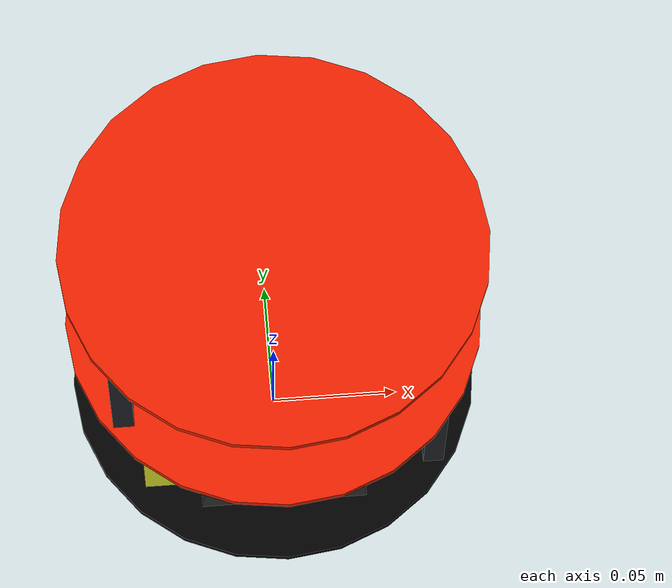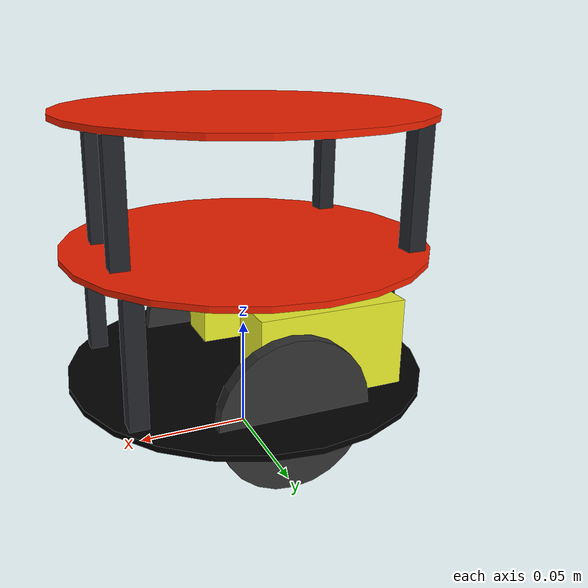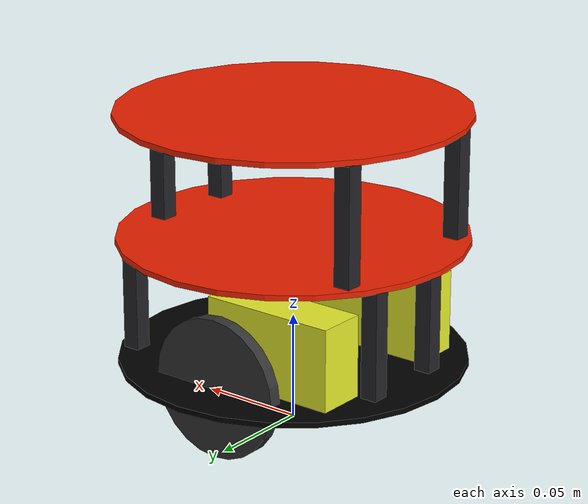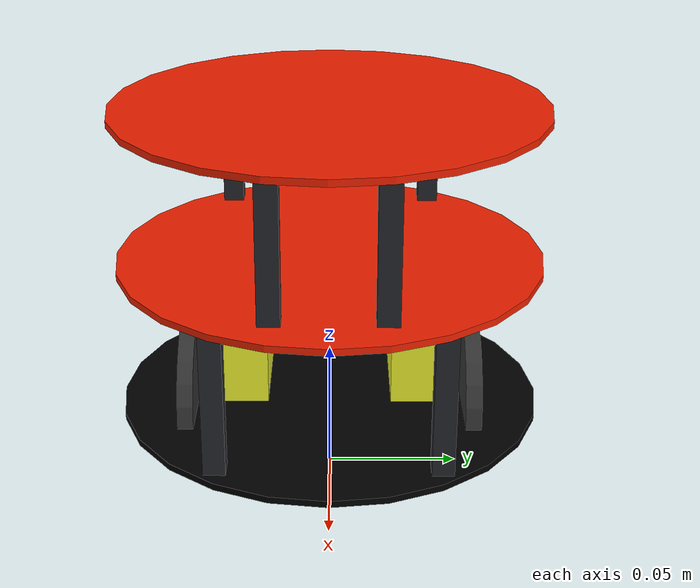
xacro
<?xml version="1.0"?>
<robot xmlns:xacro="http://www.ros.org/wiki/xacro" name="D2Rbot">

  <!--casterwiel hoog 13mm: 0.0013, diameter basis 36mm: 0.0036 (~ halve bol) -->

  <material name="black">
    <color rgba="0 0 0 1"/>
  </material>

  <material name="orange">
    <color rgba="0.94 0.13 0.0 1"/>
  </material>

  <material name="yellow">
    <color rgba="0.92 0.94 0.17 1"/>
  </material>

  <material name="white">
    <color rgba="1 1 1 1"/>
  </material>

  <material name="shark-blue">
    <color rgba="0.141 0.145 0.165 1"/>
  </material>

  <material name="dark_gray">
    <color rgba="0.2 0.2 0.2 1"/>
  </material>

  <xacro:property name="chassis_z_offset" value="0.03125" />

  <!-- Properties of each of the three plates -->
  <xacro:property name="plate_diameter" value="0.160" />
  <xacro:property name="plate_height" value="0.0025" />
  <xacro:property name="plate_mass" value="0.394" />
  <xacro:property name="bottomplate_mass" value="0.350" />
  <xacro:property name="distance_between_plates" value="${connector_height + plate_height}" />

  <!-- Properties of the motors -->
  <!-- Motor dimensions are including the bracket size -->
  <xacro:property name="motor_length" value="0.065" />
  <xacro:property name="motor_width" value="0.023" />
  <xacro:property name="motor_height" value="0.038" />
  <xacro:property name="motor_x_offset" value="0.0215" />
  <xacro:property name="motor_y_offset" value="0.0465" />
  <xacro:property name="motorshaft_x_offset" value="0.0215" />
  <xacro:property name="motorshaft_y_offset" value="${motor_width/2}" />
  <xacro:property name="motorshaft_z_offset" value="-0.0190" />
  <xacro:property name="motor_mass" value="0.037" />

  <!--- Properties of the wheels -->
  <xacro:property name="wheel_diameter" value="0.065" />
  <xacro:property name="wheel_width" value="0.006" />
  <xacro:property name="wheel_offset" value="0.007" />
  <xacro:property name="wheel_mass" value="0.012" />

  <!-- Properties of the vertical connection beams -->
  <xacro:property name="connector_height" value="0.055" />
  <xacro:property name="connector_width" value="0.008" />
  <xacro:property name="connector_x_offset" value="0.060" />
  <xacro:property name="connector_y_offset" value="0.040" />
  <xacro:property name="connector_y_narrow_shift" value="-0.020" />
  <xacro:property name="connector_mass" value="0.002" />

  <!-- Empty first link "world" -->
  <link name="world" />

  <!-- Base_link -->
  <link name="base_link" />

  <!-- Footprint_link -->
  <link name="footprint_link" />

  <!-- A simple fixed joint from our empty world link, to our base. -->
  <!-- The base origin is not offset from the world origin. -->
  <joint name="world_joint" type="fixed">
    <origin xyz="0 0 0" rpy="0 0 0"/>
    <parent link="world"/>
    <child link="base_link"/>
  </joint>

  <joint name="footprint_joint" type="fixed">
    <origin xyz="0 0 ${-chassis_z_offset}" rpy="0 0 0"/>
    <parent link="base_link"/>
    <child link="footprint_link"/>
  </joint>

  <!-- Macro's -->
  <xacro:include filename="$(find d2rbot_description)/urdf/default_inertial.urdf.xacro"/>

  <!-- Start plate macro -->
  <xacro:macro name="plate" params="prefix materialname mass parent parentdistance">

    <link name="${prefix}plate_link">
      <visual>
        <geometry>
          <cylinder length="${plate_height}" radius="${plate_diameter/2}"/>
        </geometry>
        <material name="${materialname}"/>
      </visual>
      <collision>
        <geometry>
          <cylinder length="${plate_height}" radius="${plate_diameter/2}"/>
        </geometry>
      </collision>
      <xacro:default_cylinder_inertial mass="${mass}" radius="${plate_diameter/2}" height="${plate_height}" />
    </link>
    <joint name="${parent}_to_${prefix}plate_joint" type="fixed">
      <parent link="${parent}_link"/>
      <child link="${prefix}plate_link"/>
      <origin xyz="0.0 0.0 ${parentdistance}"/>
    </joint>

  </xacro:macro>

  <!-- Start motorblock macro -->
  <xacro:macro name="motorblock" params="prefix reflect materialname parent">

    <link name="${prefix}motorblock_link">
      <visual>
        <geometry>
          <box size="${motor_length} ${motor_width} ${motor_height}"/>
        </geometry>
        <origin xyz="0.0 0.0 0.0" rpy="0.0 0.0 0.0"/>
        <material name="${materialname}"/>
      </visual>
      <collision>
        <geometry>
          <box size="${motor_length} ${motor_width} ${motor_height}"/>
        </geometry>
      </collision>
      <xacro:default_box_inertial mass="${motor_mass}" />
    </link>
    <joint name="${parent}_to_${prefix}motorblock_joint" type="fixed">
      <parent link="${parent}_link"/>
      <child link="${prefix}motorblock_link"/>
      <origin xyz="${-1*motor_x_offset} ${reflect*(motor_y_offset - motor_width/2)} ${motor_height/2 + plate_height/2}"/>
    </joint>

  </xacro:macro>

  <!-- Start wheel macro -->
  <xacro:macro name="wheel" params="prefix reflect materialname parent">

    <link name="${prefix}wheel_link">
      <visual>
        <geometry>
          <cylinder length="${wheel_width}" radius="${wheel_diameter/2}" />
        </geometry>
        <origin xyz="0.0 0.0 0.0" rpy="${pi/2} 0.0 0.0" />
        <material name="${materialname}"/>
      </visual>
      <collision>
        <geometry>
          <cylinder length="${wheel_width}" radius="${wheel_diameter/2}" />
        </geometry>
      </collision>
      <xacro:default_cylinder_inertial mass="${wheel_mass}" radius="${wheel_diameter/2}" height="${wheel_width}" />
    </link>
    <joint name="${parent}_to_${prefix}wheel_joint" type="continuous">
      <axis xyz="0 1 0" rpy="0 0 0" />
      <parent link="${parent}_link" />
      <child link="${prefix}wheel_link" />
      <origin xyz="${motorshaft_x_offset} ${reflect*(motorshaft_y_offset + wheel_offset)} ${motorshaft_z_offset}" rpy="0 0 0" />
    </joint>

  </xacro:macro>

  <!-- Start connector macro -->
  <!-- Note: connectors are for visual display only. -->
  <!--       The three plates are directly joint to each other.-->
  <xacro:macro name="connector" params="prefix materialname x_reflect y_reflect y_shift:=0.000 parent">

    <link name="${prefix}_${parent}connector_link">
      <visual>
        <geometry>
          <box size="${connector_width} ${connector_width} ${connector_height}"/>
        </geometry>
        <material name="${materialname}"/>
      </visual>
      <collision>
        <geometry>
          <box size="${connector_width} ${connector_width} ${connector_height}"/>
        </geometry>
      </collision>
      <xacro:default_box_inertial mass="${connector_mass}" />
    </link>
    <joint name="${parent}_to_${prefix}connector_joint" type="fixed">
      <parent link="${parent}_link"/>
      <child link="${prefix}_${parent}connector_link"/>
      <origin xyz="${x_reflect * connector_x_offset} ${y_reflect * (connector_y_offset + y_shift)} ${connector_height/2}"/>
    </joint>
  </xacro:macro>

  <!-- Start of the actual robot model -->
  <!-- Bottomplate -->
  <xacro:plate prefix="bottom" materialname="black" mass="${bottomplate_mass}" parent="base" parentdistance="${chassis_z_offset}"/>

  <!-- Middleplate -->
  <xacro:plate prefix="middle" materialname="orange" mass="${plate_mass}" parent="bottomplate" parentdistance="${distance_between_plates}"/>

  <!-- Topplate -->
  <xacro:plate prefix="top" materialname="orange" mass="${plate_mass}" parent="middleplate" parentdistance="${distance_between_plates}"/>

  <!-- Leftmotorblock -->
  <xacro:motorblock prefix="left" reflect="1" materialname="yellow" parent="bottomplate" />
  <!-- Leftwheel -->
  <xacro:wheel prefix="left" reflect="1" materialname="dark_gray" parent="leftmotorblock" />

  <!-- Rightmotorblock -->
  <xacro:motorblock prefix="right" reflect="-1" materialname="yellow" parent="bottomplate" />
  <!-- Rightwheel -->
  <xacro:wheel prefix="right" reflect="-1" materialname="dark_gray" parent="rightmotorblock" />

  <!-- Forwardleft connector bottomplate -->
  <xacro:connector prefix="forwardleft" x_reflect="1" y_reflect="1" materialname="shark-blue" parent="bottomplate" />
  <!-- Forwardright connector bottomplate -->
  <xacro:connector prefix="forwardright" x_reflect="1" y_reflect="-1" materialname="shark-blue" parent="bottomplate" />
  <!-- Backwardleft connector bottomplate -->
  <xacro:connector prefix="backwardleft" x_reflect="-1" y_reflect="1" y_shift="${connector_y_narrow_shift}" materialname="shark-blue" parent="bottomplate" />
  <!-- Backwardright connector bottomplate -->
  <xacro:connector prefix="backwardright" x_reflect="-1" y_reflect="-1" y_shift="${connector_y_narrow_shift}" materialname="shark-blue" parent="bottomplate" />
  <!-- Forwardleft connector niddleplate -->
  <xacro:connector prefix="forwardleft" x_reflect="1" y_reflect="1" y_shift="${connector_y_narrow_shift}" materialname="shark-blue" parent="middleplate" />
  <!-- Forwardright connector middleplate -->
  <xacro:connector prefix="forwardright" x_reflect="1" y_reflect="-1" y_shift="${connector_y_narrow_shift}" materialname="shark-blue" parent="middleplate" />
  <!-- Backwardleft connector middleplate -->
  <xacro:connector prefix="backwardleft" x_reflect="-1" y_reflect="1" materialname="shark-blue" parent="middleplate" />
  <!-- Backwardright connector middleplate -->
  <xacro:connector prefix="backwardright" x_reflect="-1" y_reflect="-1" materialname="shark-blue" parent="middleplate" />

</robot>

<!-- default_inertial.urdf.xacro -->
<robot xmlns:xacro="http://www.ros.org/wiki/xacro">

  <xacro:macro name="default_generic_inertial" params="mass">
    <inertial>
      <mass value="${mass}" />
      <inertia ixx="1e-3" ixy="0.0" ixz="0.0" iyy="1e-3" iyz="0.0" izz="1e-3" />
    </inertial>
  </xacro:macro>

  <xacro:macro name="default_box_inertial" params="mass">
    <inertial>
      <mass value="${mass}"/>
      <!-- Inertia for a box: ixx=iyy=izz=1.0, ixy=ixz=iyz=0 -->
      <inertia ixx="1.0" ixy="0.0" ixz="0.0" iyy="1.0" iyz="0.0" izz="1.0"/>
    </inertial>
  </xacro:macro>

  <xacro:macro name="default_cylinder_inertial" params="mass radius height">
    <inertial>
      <mass value="${mass}"/>
      <!-- Inertia for a cylinder: ixx = iyy = m*(3r^2 + h^2)/12, izz = m*r^2/2, ixy=ixz=iyz=0 -->
      <inertia ixx="${mass * (3 * radius * radius + height * height) / 12}"
               iyy="${mass * (3 * radius * radius + height * height) / 12}"
               izz="${mass * radius * radius / 2}"
               ixy="0" iyz="0" ixz="0" />
    </inertial>
  </xacro:macro>

  <xacro:macro name="default_sphere_inertial" params="mass radius">
    <inertial>
      <origin xyz="0 0 0" rpy="0 0 0"/>
      <!-- The inertia values for a uniform density sphere -->
      <!-- ixx = iyy = izz = (2/5) * m * r^2, ixy=ixz=iyz=0 -->
      <inertia ixx="${(2.0/5.0) * mass * radius*radius}"
               iyy="${(2.0/5.0) * mass * radius*radius}"
               izz="${(2.0/5.0) * mass * radius*radius}"
               ixy="0" iyz="0" ixz="0" />
      <mass value="${mass}" />
    </inertial>
  </xacro:macro>

</robot>
